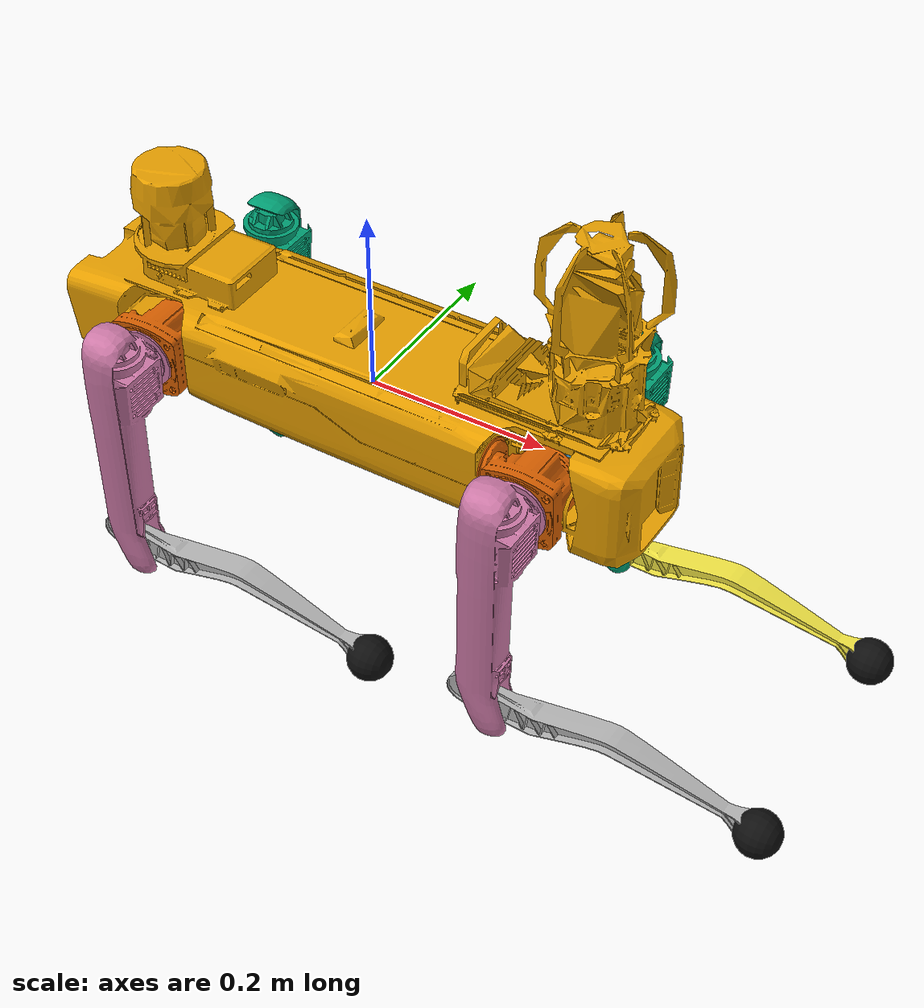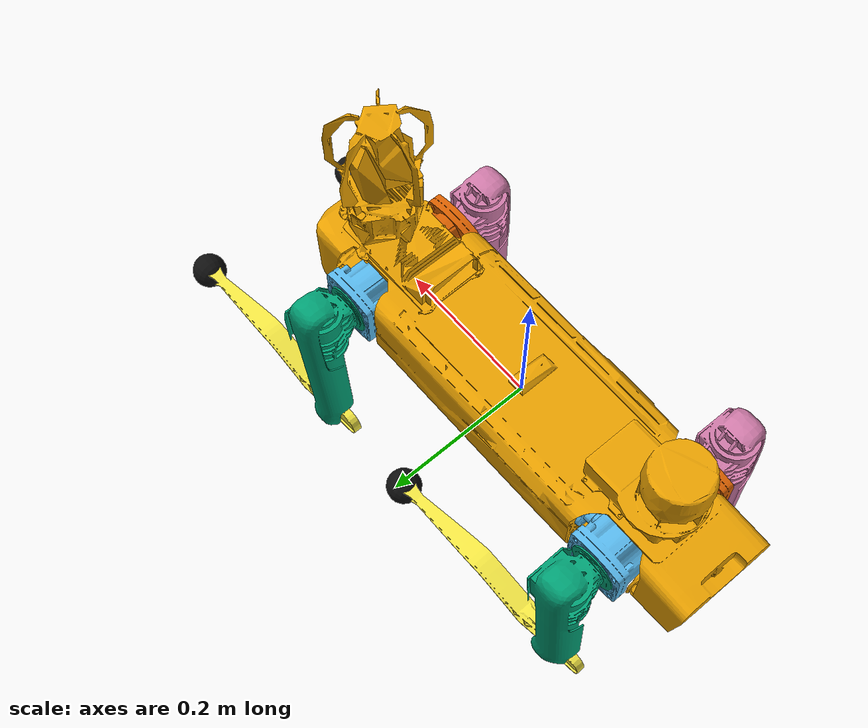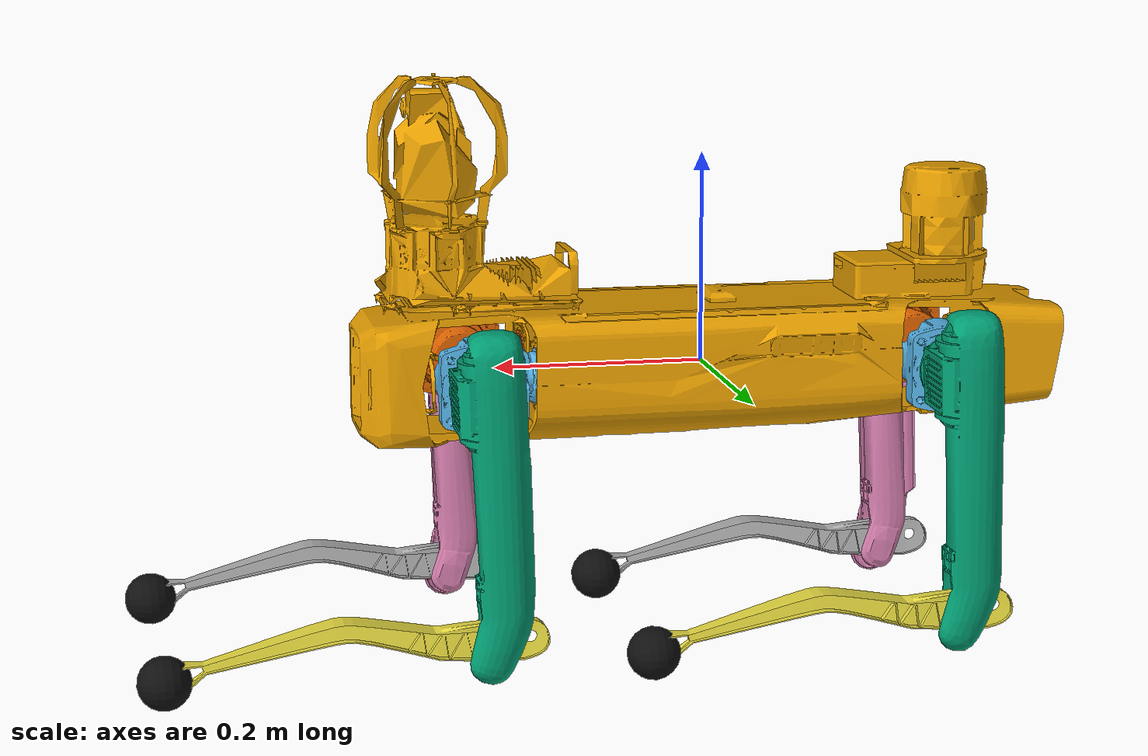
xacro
<?xml version="1.0"?>
<robot name="spot" xmlns:xacro="http://www.ros.org/wiki/xacro">

  <xacro:arg name="mesh_uri_prefix" default="package://plant_simulation/models/spot/meshes"/>
  <xacro:arg name="enable_gazebo" default="true"/>
  <xacro:arg name="enable_cameras" default="true"/>
  <xacro:arg name="enable_thermal" default="true"/>
  <xacro:arg name="depth_rate" default="10"/>
  <xacro:arg name="inspection_rate" default="10"/>
  <xacro:arg name="thermal_rate" default="5"/>
  <xacro:arg name="inspection_width" default="800"/>
  <xacro:arg name="inspection_height" default="600"/>
  <xacro:property name="mesh_prefix" value="$(arg mesh_uri_prefix)"/>

  <xacro:property name="hip_x_offset" value="0.2245"/>
  <xacro:property name="hip_y_offset" value="0.044"/>
  <xacro:property name="hip_to_thigh_y" value="0.090"/>
  <xacro:property name="upper_leg_length" value="0.2256"/>
  <xacro:property name="lower_leg_length" value="0.2997"/>
  <xacro:property name="foot_radius" value="0.025"/>

  <xacro:property name="base_mass" value="8.0"/>
  <xacro:property name="hip_mass" value="0.6"/>
  <xacro:property name="upper_leg_mass" value="0.9"/>
  <xacro:property name="lower_leg_mass" value="0.25"/>
  <xacro:property name="base_box_x" value="0.60"/>
  <xacro:property name="base_box_y" value="0.22"/>
  <xacro:property name="base_box_z" value="0.14"/>
  <xacro:property name="base_ixx" value="0.0453"/>
  <xacro:property name="base_iyy" value="0.2531"/>
  <xacro:property name="base_izz" value="0.2723"/>

  <xacro:property name="hip_x_lower" value="-0.70"/>
  <xacro:property name="hip_x_upper" value="0.70"/>
  <xacro:property name="hip_x_effort" value="45.0"/>
  <xacro:property name="hip_x_velocity" value="15.0"/>
  <xacro:property name="hip_y_lower" value="-1.60"/>
  <xacro:property name="hip_y_upper" value="2.60"/>
  <xacro:property name="hip_y_effort" value="45.0"/>
  <xacro:property name="hip_y_velocity" value="15.0"/>
  <xacro:property name="knee_lower" value="-2.80"/>
  <xacro:property name="knee_upper" value="-0.20"/>
  <xacro:property name="knee_effort" value="60.0"/>
  <xacro:property name="knee_velocity" value="15.0"/>

  <xacro:property name="joint_damping" value="0.1"/>
  <xacro:property name="joint_friction" value="0.05"/>
  <xacro:property name="servo_p_gain" value="450.0"/>
  <xacro:property name="servo_d_gain" value="3.0"/>
  <!-- joint state publication rate (Hz): 2x the 100 Hz locomotion loop -->
  <xacro:property name="joint_state_rate" value="200"/>

  <!-- ===================== geometry fitted to the meshes ===================== -->
  <!-- trunk box centred on the base_link mesh bounding box (x -0.341..0.332, z -0.065..0.069) -->
  <xacro:property name="base_box_cx" value="-0.004"/>
  <xacro:property name="base_box_cz" value="0.002"/>
  <!-- hip housing: cylinder about the link y axis, offset towards the body centre -->
  <xacro:property name="hip_radius" value="0.041"/>
  <xacro:property name="hip_length" value="0.075"/>
  <xacro:property name="hip_cx" value="0.010"/>
  <xacro:property name="hip_cy" value="0.011"/>
  <!-- thigh box (hip_y joint .. knee) -->
  <xacro:property name="thigh_box_x" value="0.060"/>
  <xacro:property name="thigh_box_y" value="0.050"/>
  <xacro:property name="thigh_box_z" value="0.240"/>
  <xacro:property name="thigh_cx" value="-0.006"/>
  <xacro:property name="thigh_cz" value="-0.115"/>
  <!-- shin cylinder (the mesh shin bows forward by ~2 cm) -->
  <xacro:property name="shin_radius" value="0.016"/>
  <xacro:property name="shin_length" value="0.235"/>
  <xacro:property name="shin_cx" value="0.012"/>
  <xacro:property name="shin_cz" value="-0.1475"/>
  <xacro:property name="lower_com_cx" value="0.010"/>
  <xacro:property name="lower_com_cz" value="-0.140"/>

  <!-- foot contact: high friction rubber -->
  <xacro:property name="foot_mu" value="1.0"/>

  <!-- ===================== helpers ===================== -->
  <xacro:macro name="box_inertia" params="m x y z">
    <inertia ixx="${m * (y * y + z * z) / 12.0}" ixy="0.0" ixz="0.0"
             iyy="${m * (x * x + z * z) / 12.0}" iyz="0.0"
             izz="${m * (x * x + y * y) / 12.0}"/>
  </xacro:macro>
  <!-- solid cylinder, symmetry axis = link z -->
  <xacro:macro name="cylinder_inertia_z" params="m r h">
    <inertia ixx="${m * (3.0 * r * r + h * h) / 12.0}" ixy="0.0" ixz="0.0"
             iyy="${m * (3.0 * r * r + h * h) / 12.0}" iyz="0.0"
             izz="${m * r * r / 2.0}"/>
  </xacro:macro>
  <!-- solid cylinder, symmetry axis = link y -->
  <xacro:macro name="cylinder_inertia_y" params="m r h">
    <inertia ixx="${m * (3.0 * r * r + h * h) / 12.0}" ixy="0.0" ixz="0.0"
             iyy="${m * r * r / 2.0}" iyz="0.0"
             izz="${m * (3.0 * r * r + h * h) / 12.0}"/>
  </xacro:macro>

  <material name="spot_foot_rubber">
    <color rgba="0.06 0.06 0.06 1.0"/>
  </material>

  <!-- ===================== trunk ===================== -->
  <link name="base_link">
    <inertial>
      <origin xyz="${base_box_cx} 0 ${base_box_cz}" rpy="0 0 0"/>
      <mass value="${base_mass}"/>
      <inertia ixx="${base_ixx}" ixy="0.0" ixz="0.0" iyy="${base_iyy}" iyz="0.0" izz="${base_izz}"/>
    </inertial>
    <visual name="base_link_visual">
      <origin xyz="0 0 0" rpy="0 0 0"/>
      <geometry>
        <mesh filename="${mesh_prefix}/base_link.obj" scale="1 1 1"/>
      </geometry>
    </visual>
    <visual name="base_cam_visual">
      <origin xyz="0 0 0" rpy="0 0 0"/>
      <geometry>
        <mesh filename="${mesh_prefix}/base_cam.obj" scale="1 1 1"/>
      </geometry>
    </visual>
    <visual name="base_eap_visual">
      <origin xyz="0 0 0" rpy="0 0 0"/>
      <geometry>
        <mesh filename="${mesh_prefix}/base_eap.obj" scale="1 1 1"/>
      </geometry>
    </visual>
    <collision name="base_link_collision">
      <origin xyz="${base_box_cx} 0 ${base_box_cz}" rpy="0 0 0"/>
      <geometry>
        <box size="${base_box_x} ${base_box_y} ${base_box_z}"/>
      </geometry>
    </collision>
  </link>

  <!-- ===================== legs ===================== -->
  <!-- leg: name prefix, sx = +1 front / -1 rear, sy = +1 left / -1 right -->
  <xacro:macro name="leg" params="leg sx sy">

    <joint name="${leg}_hip_x" type="revolute">
      <parent link="base_link"/>
      <child link="${leg}_hip"/>
      <origin xyz="${sx * hip_x_offset} ${sy * hip_y_offset} 0" rpy="0 0 0"/>
      <axis xyz="1 0 0"/>
      <limit lower="${hip_x_lower}" upper="${hip_x_upper}" effort="${hip_x_effort}" velocity="${hip_x_velocity}"/>
      <dynamics damping="${joint_damping}" friction="${joint_friction}"/>
    </joint>

    <link name="${leg}_hip">
      <inertial>
        <origin xyz="${-sx * hip_cx} ${sy * hip_cy} 0" rpy="0 0 0"/>
        <mass value="${hip_mass}"/>
        <xacro:cylinder_inertia_y m="${hip_mass}" r="${hip_radius}" h="${hip_length}"/>
      </inertial>
      <visual name="${leg}_hip_visual">
        <origin xyz="0 0 0" rpy="0 0 0"/>
        <geometry>
          <mesh filename="${mesh_prefix}/${leg}_hip.obj" scale="1 1 1"/>
        </geometry>
      </visual>
      <!-- no collision: the hip housing lies inside the trunk box -->
    </link>

    <joint name="${leg}_hip_y" type="revolute">
      <parent link="${leg}_hip"/>
      <child link="${leg}_upper_leg"/>
      <origin xyz="0 ${sy * hip_to_thigh_y} 0" rpy="0 0 0"/>
      <axis xyz="0 1 0"/>
      <limit lower="${hip_y_lower}" upper="${hip_y_upper}" effort="${hip_y_effort}" velocity="${hip_y_velocity}"/>
      <dynamics damping="${joint_damping}" friction="${joint_friction}"/>
    </joint>

    <link name="${leg}_upper_leg">
      <inertial>
        <origin xyz="0 0 ${-0.5 * upper_leg_length}" rpy="0 0 0"/>
        <mass value="${upper_leg_mass}"/>
        <xacro:box_inertia m="${upper_leg_mass}" x="${thigh_box_x}" y="${thigh_box_y}" z="${upper_leg_length}"/>
      </inertial>
      <visual name="${leg}_upper_leg_visual">
        <origin xyz="0 0 0" rpy="0 0 0"/>
        <geometry>
          <mesh filename="${mesh_prefix}/${leg}_upper_leg.obj" scale="1 1 1"/>
        </geometry>
      </visual>
      <collision name="${leg}_upper_leg_collision">
        <origin xyz="${thigh_cx} 0 ${thigh_cz}" rpy="0 0 0"/>
        <geometry>
          <box size="${thigh_box_x} ${thigh_box_y} ${thigh_box_z}"/>
        </geometry>
      </collision>
    </link>

    <joint name="${leg}_knee" type="revolute">
      <parent link="${leg}_upper_leg"/>
      <child link="${leg}_lower_leg"/>
      <origin xyz="0 0 ${-upper_leg_length}" rpy="0 0 0"/>
      <axis xyz="0 1 0"/>
      <limit lower="${knee_lower}" upper="${knee_upper}" effort="${knee_effort}" velocity="${knee_velocity}"/>
      <dynamics damping="${joint_damping}" friction="${joint_friction}"/>
    </joint>

    <link name="${leg}_lower_leg">
      <inertial>
        <origin xyz="${lower_com_cx} 0 ${lower_com_cz}" rpy="0 0 0"/>
        <mass value="${lower_leg_mass}"/>
        <xacro:cylinder_inertia_z m="${lower_leg_mass}" r="${shin_radius}" h="${lower_leg_length}"/>
      </inertial>
      <visual name="${leg}_lower_leg_visual">
        <origin xyz="0 0 0" rpy="0 0 0"/>
        <geometry>
          <mesh filename="${mesh_prefix}/${leg}_lower_leg.obj" scale="1 1 1"/>
        </geometry>
      </visual>
      <collision name="${leg}_lower_leg_collision">
        <origin xyz="${shin_cx} 0 ${shin_cz}" rpy="0 0 0"/>
        <geometry>
          <cylinder radius="${shin_radius}" length="${shin_length}"/>
        </geometry>
      </collision>
    </link>

    <joint name="${leg}_foot_fixed" type="fixed">
      <parent link="${leg}_lower_leg"/>
      <child link="${leg}_foot"/>
      <origin xyz="0 0 ${-lower_leg_length}" rpy="0 0 0"/>
    </joint>

    <link name="${leg}_foot">
      <visual name="${leg}_foot_visual">
        <origin xyz="0 0 0" rpy="0 0 0"/>
        <geometry>
          <sphere radius="${foot_radius}"/>
        </geometry>
        <material name="spot_foot_rubber"/>
      </visual>
      <collision name="${leg}_foot_collision">
        <origin xyz="0 0 0" rpy="0 0 0"/>
        <geometry>
          <sphere radius="${foot_radius}"/>
        </geometry>
      </collision>
    </link>

    <gazebo reference="${leg}_foot">
      <mu1>${foot_mu}</mu1>
      <mu2>${foot_mu}</mu2>
    </gazebo>

    <xacro:if value="$(arg enable_gazebo)">
      <xacro:joint_servo joint="${leg}_hip_x" initial="0.0" effort="${hip_x_effort}"/>
      <xacro:joint_servo joint="${leg}_hip_y" initial="0.0" effort="${hip_y_effort}"/>
      <!-- the knee range [-2.80, -0.20] excludes 0: start the servo at the limit -->
      <xacro:joint_servo joint="${leg}_knee" initial="${knee_upper}" effort="${knee_effort}"/>
    </xacro:if>
  </xacro:macro>

  <xacro:macro name="joint_servo" params="joint initial effort">
    <gazebo>
      <plugin filename="gz-sim-joint-position-controller-system"
              name="gz::sim::systems::JointPositionController">
        <joint_name>${joint}</joint_name>
        <topic>/spot/joint/${joint}/cmd_pos</topic>
        <use_velocity_commands>false</use_velocity_commands>
        <cmd_max>${effort}</cmd_max>
        <cmd_min>${-effort}</cmd_min>
        <p_gain>${servo_p_gain}</p_gain>
        <i_gain>0.0</i_gain>
        <d_gain>${servo_d_gain}</d_gain>
        <initial_position>${initial}</initial_position>
      </plugin>
    </gazebo>
  </xacro:macro>

  <xacro:leg leg="fl" sx="1" sy="1"/>
  <xacro:leg leg="fr" sx="1" sy="-1"/>
  <xacro:leg leg="rl" sx="-1" sy="1"/>
  <xacro:leg leg="rr" sx="-1" sy="-1"/>

  <!-- ===================== sensor frames (robot_model.SENSORS) ===================== -->
  <!-- camera links: Gazebo convention, the camera looks along +X; positive pitch = down -->
  <xacro:macro name="sensor_frame" params="name xyz rpy">
    <joint name="${name}_joint" type="fixed">
      <parent link="base_link"/>
      <child link="${name}"/>
      <origin xyz="${xyz}" rpy="${rpy}"/>
    </joint>
    <link name="${name}"/>
  </xacro:macro>
  <!-- REP-103 optical frame (z forward, x right, y down) for ROS image consumers -->
  <xacro:macro name="optical_frame" params="camera">
    <joint name="${camera}_optical_joint" type="fixed">
      <parent link="${camera}_link"/>
      <child link="${camera}_optical_frame"/>
      <origin xyz="0 0 0" rpy="${-pi / 2} 0 ${-pi / 2}"/>
    </joint>
    <link name="${camera}_optical_frame"/>
  </xacro:macro>

  <xacro:sensor_frame name="imu_link" xyz="0.0 0.0 0.0" rpy="0 0 0"/>
  <xacro:sensor_frame name="depth_camera_link" xyz="0.34 0.0 0.0" rpy="0 0.60 0"/>
  <xacro:sensor_frame name="inspection_camera_link" xyz="0.30 0.0 0.20" rpy="0 -0.30 0"/>
  <xacro:sensor_frame name="thermal_camera_link" xyz="0.30 -0.05 0.20" rpy="0 -0.30 0"/>
  <xacro:optical_frame camera="depth_camera"/>
  <xacro:optical_frame camera="inspection_camera"/>
  <xacro:optical_frame camera="thermal_camera"/>

  <!-- ===================== Gazebo: model plugins ===================== -->
  <xacro:if value="$(arg enable_gazebo)">
    <gazebo>
      <plugin filename="gz-sim-joint-state-publisher-system"
              name="gz::sim::systems::JointStatePublisher">
        <update_rate>${joint_state_rate}</update_rate>
      </plugin>
      <!-- ground-truth odometry of base_link -->
      <plugin filename="gz-sim-odometry-publisher-system"
              name="gz::sim::systems::OdometryPublisher">
        <odom_frame>odom</odom_frame>
        <robot_base_frame>base_link</robot_base_frame>
        <odom_publish_frequency>50</odom_publish_frequency>
        <odom_topic>/model/spot/odometry</odom_topic>
        <dimensions>3</dimensions>
      </plugin>
    </gazebo>

    <!-- ===================== Gazebo: sensors ===================== -->
    <gazebo reference="imu_link">
      <sensor name="imu" type="imu">
        <always_on>true</always_on>
        <update_rate>200</update_rate>
        <visualize>false</visualize>
        <topic>/imu</topic>
        <gz_frame_id>imu_link</gz_frame_id>
        <imu>
          <angular_velocity>
            <x><noise type="gaussian"><mean>0.0</mean><stddev>0.0002</stddev></noise></x>
            <y><noise type="gaussian"><mean>0.0</mean><stddev>0.0002</stddev></noise></y>
            <z><noise type="gaussian"><mean>0.0</mean><stddev>0.0002</stddev></noise></z>
          </angular_velocity>
          <linear_acceleration>
            <x><noise type="gaussian"><mean>0.0</mean><stddev>0.017</stddev></noise></x>
            <y><noise type="gaussian"><mean>0.0</mean><stddev>0.017</stddev></noise></y>
            <z><noise type="gaussian"><mean>0.0</mean><stddev>0.017</stddev></noise></z>
          </linear_acceleration>
        </imu>
      </sensor>
    </gazebo>

    <xacro:if value="$(arg enable_cameras)">
      <gazebo reference="depth_camera_link">
        <sensor name="depth_camera" type="depth_camera">
          <always_on>true</always_on>
          <update_rate>$(arg depth_rate)</update_rate>
          <visualize>false</visualize>
          <topic>/depth_camera/image</topic>
          <gz_frame_id>depth_camera_link</gz_frame_id>
          <camera name="depth_camera">
            <horizontal_fov>1.5</horizontal_fov>
            <image>
              <width>212</width>
              <height>120</height>
              <format>R_FLOAT32</format>
            </image>
            <clip>
              <near>0.1</near>
              <far>4.0</far>
            </clip>
            <depth_camera>
              <clip>
                <near>0.1</near>
                <far>4.0</far>
              </clip>
            </depth_camera>
            <camera_info_topic>/depth_camera/camera_info</camera_info_topic>
          </camera>
        </sensor>
      </gazebo>

      <!-- RGB inspection camera (gauge reading) -->
      <gazebo reference="inspection_camera_link">
        <sensor name="inspection_camera" type="camera">
          <always_on>true</always_on>
          <update_rate>$(arg inspection_rate)</update_rate>
          <visualize>false</visualize>
          <topic>/inspection_camera/image</topic>
          <gz_frame_id>inspection_camera_link</gz_frame_id>
          <camera name="inspection_camera">
            <horizontal_fov>0.9</horizontal_fov>
            <image>
              <width>$(arg inspection_width)</width>
              <height>$(arg inspection_height)</height>
              <format>R8G8B8</format>
            </image>
            <clip>
              <near>0.05</near>
              <far>50.0</far>
            </clip>
            <camera_info_topic>/inspection_camera/camera_info</camera_info_topic>
          </camera>
        </sensor>
      </gazebo>

      <xacro:if value="$(arg enable_thermal)">
        <!-- thermal camera: L16, Kelvin = value * 0.01 -->
        <gazebo reference="thermal_camera_link">
          <sensor name="thermal_camera" type="thermal">
            <always_on>true</always_on>
            <update_rate>$(arg thermal_rate)</update_rate>
            <visualize>false</visualize>
            <topic>/thermal_camera/image</topic>
            <gz_frame_id>thermal_camera_link</gz_frame_id>
            <camera name="thermal_camera">
              <horizontal_fov>0.8</horizontal_fov>
              <image>
                <width>320</width>
                <height>240</height>
                <format>L16</format>
              </image>
              <clip>
                <near>0.1</near>
                <far>50.0</far>
              </clip>
              <camera_info_topic>/thermal_camera/camera_info</camera_info_topic>
            </camera>
            <plugin filename="gz-sim-thermal-sensor-system"
                    name="gz::sim::systems::ThermalSensor">
              <min_temp>253.15</min_temp>
              <max_temp>655.0</max_temp>
              <resolution>0.01</resolution>
            </plugin>
          </sensor>
        </gazebo>
      </xacro:if>
    </xacro:if>
  </xacro:if>

</robot>
